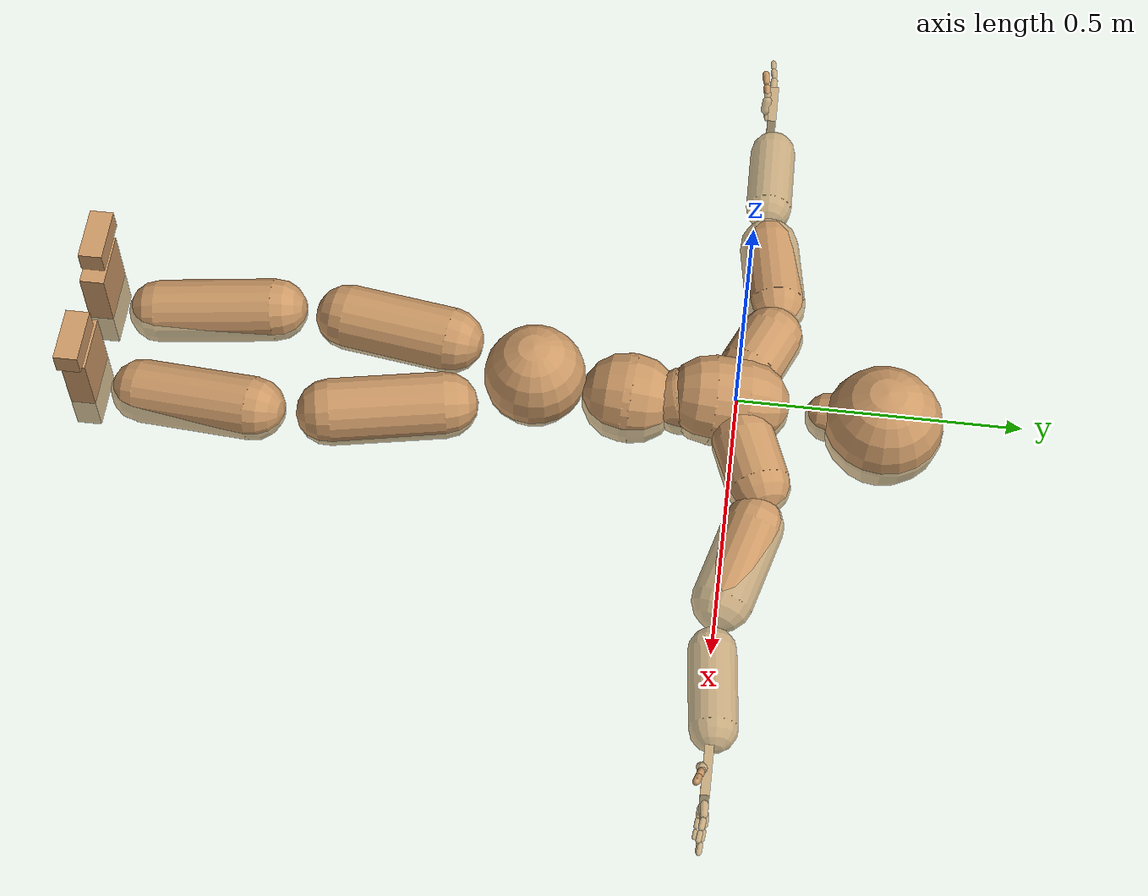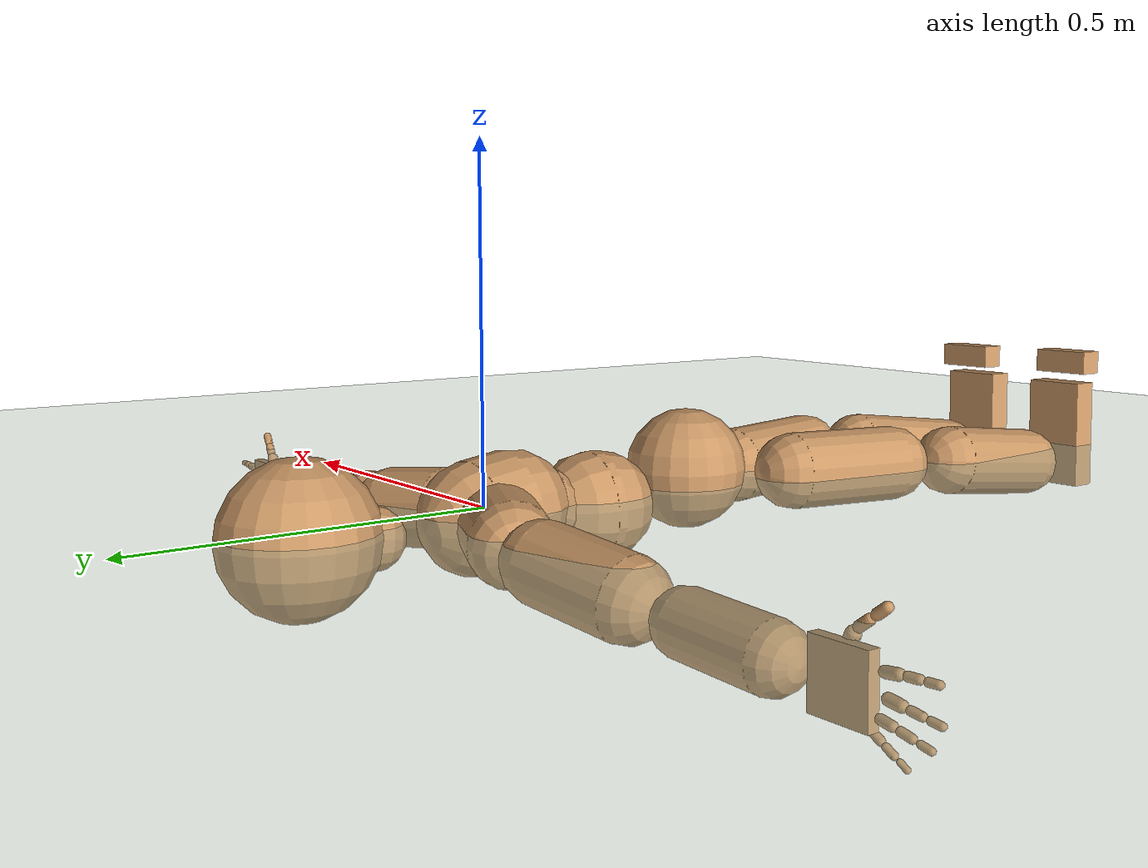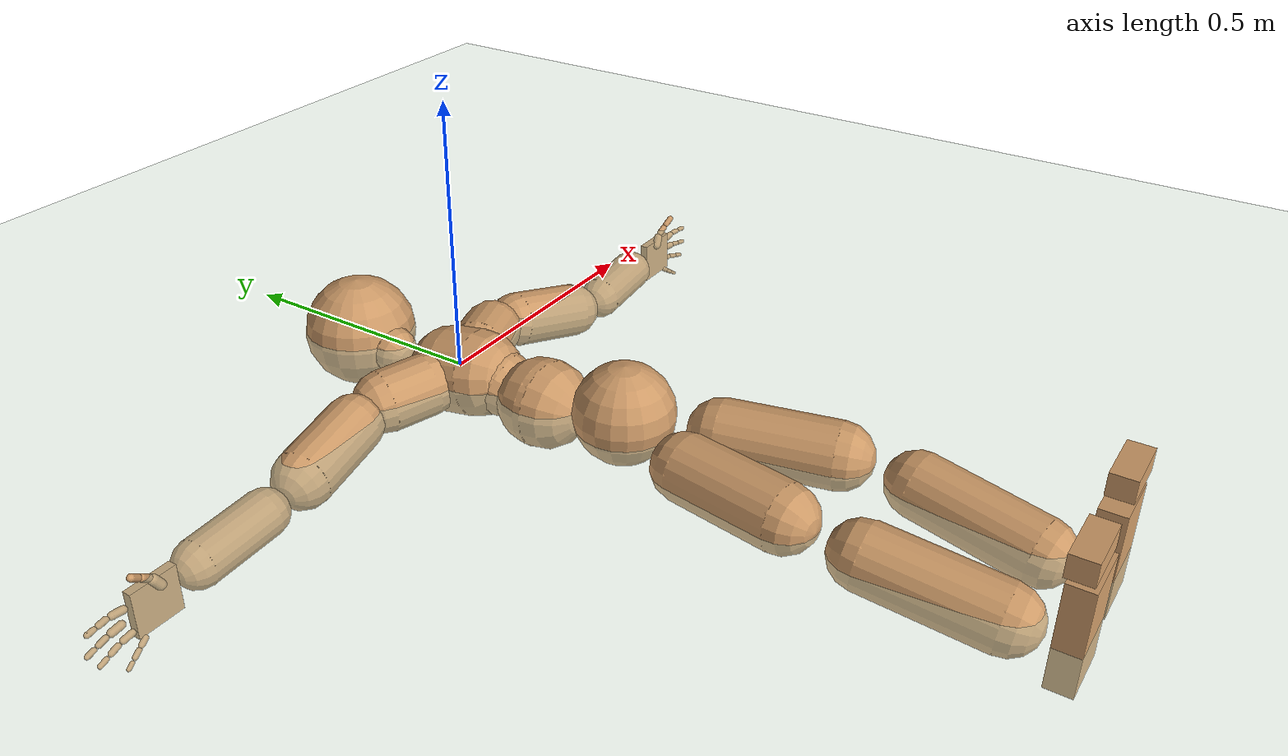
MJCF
<?xml version='1.0' encoding='utf-8'?>
<mujoco model="smplx_mapped_s149">
  <compiler coordinate="local" />
  <default>
    <joint damping="0.0" armature="0.01" stiffness="0.0" limited="true" />
    <geom conaffinity="1" condim="3" contype="7" margin="0.001" rgba="0.8 0.6 .4 1" />
  </default>
  <asset>
    <texture type="skybox" builtin="gradient" rgb1=".4 .5 .6" rgb2="0 0 0" width="100" height="100" />
    <texture builtin="flat" height="1278" mark="cross" markrgb="1 1 1" name="texgeom" random="0.01" rgb1="0.8 0.6 0.4" rgb2="0.8 0.6 0.4" type="cube" width="127" />
    <texture builtin="checker" height="100" name="texplane" rgb1="0 0 0" rgb2="0.8 0.8 0.8" type="2d" width="100" />
    <material name="MatPlane" reflectance="0.5" shininess="1" specular="1" texrepeat="60 60" texture="texplane" />
    <material name="geom" texture="texgeom" texuniform="true" />
  </asset>
  <worldbody>
    <light cutoff="100" diffuse="1 1 1" dir="-0 0 -1.3" directional="true" exponent="1" pos="0 0 1.3" specular=".1 .1 .1" />
    <geom conaffinity="1" condim="3" name="floor" pos="0 0 0" rgba="0.8 0.9 0.8 1" size="100 100 .2" type="plane" material="MatPlane" />
    <body name="Pelvis" pos="0.0013 -0.3548 0.0197">
      <freejoint name="Pelvis" />
      <geom type="sphere" contype="1" conaffinity="1" density="4629.6296296296305" size="0.09" pos="0.0000 0.0000 0.0000" name="Pelvis" />
      <body name="L_Hip" pos="0.0533 -0.0855 -0.0214">
        <joint name="L_Hip_x" type="hinge" pos="0 0 0" axis="1 0 0" stiffness="800" damping="80" armature="0.02" range="-180.00 180.00" />
        <joint name="L_Hip_y" type="hinge" pos="0 0 0" axis="0 1 0" stiffness="800" damping="80" armature="0.02" range="-180.00 180.00" />
        <joint name="L_Hip_z" type="hinge" pos="0 0 0" axis="0 0 1" stiffness="800" damping="80" armature="0.02" range="-180.00 180.00" />
        <geom type="capsule" contype="1" conaffinity="1" density="2040.816327" fromto="0.0133 -0.0658 0.0010 0.0531 -0.2631 0.0041" size="0.059" />
        <body name="L_Knee" pos="0.0664 -0.3289 0.0051">
          <joint name="L_Knee_x" type="hinge" pos="0 0 0" axis="1 0 0" stiffness="800" damping="80" armature="0.02" range="-180.00 180.00" />
          <joint name="L_Knee_y" type="hinge" pos="0 0 0" axis="0 1 0" stiffness="800" damping="80" armature="0.02" range="-180.00 180.00" />
          <joint name="L_Knee_z" type="hinge" pos="0 0 0" axis="0 0 1" stiffness="800" damping="80" armature="0.02" range="-180.00 180.00" />
          <geom type="capsule" contype="1" conaffinity="1" density="1234.567901" fromto="-0.0094 -0.0690 -0.0079 -0.0375 -0.2759 -0.0314" size="0.0564" />
          <body name="L_Ankle" pos="-0.0469 -0.3449 -0.0393">
            <joint name="L_Ankle_x" type="hinge" pos="0 0 0" axis="1 0 0" stiffness="800" damping="80" armature="0.02" range="-180.00 180.00" />
            <joint name="L_Ankle_y" type="hinge" pos="0 0 0" axis="0 1 0" stiffness="800" damping="80" armature="0.02" range="-180.00 180.00" />
            <joint name="L_Ankle_z" type="hinge" pos="0 0 0" axis="0 0 1" stiffness="800" damping="80" armature="0.02" range="-180.00 180.00" />
            <geom type="box" contype="1" conaffinity="1" density="1000" pos="0.0115 -0.0234 0.0566" size="0.0502 0.0216 0.0909" quat="1.0000 0.0000 0.0000 0.0000" />
            <body name="L_Toe" pos="0.0410 -0.0466 0.1205">
              <joint name="L_Toe_x" type="hinge" pos="0 0 0" axis="1 0 0" stiffness="500" damping="50" armature="0.02" range="-180.00 180.00" />
              <joint name="L_Toe_y" type="hinge" pos="0 0 0" axis="0 1 0" stiffness="500" damping="50" armature="0.02" range="-180.00 180.00" />
              <joint name="L_Toe_z" type="hinge" pos="0 0 0" axis="0 0 1" stiffness="500" damping="50" armature="0.02" range="-180.00 180.00" />
              <geom type="box" contype="1" conaffinity="1" density="1000" pos="-0.0115 0.0227 0.0576" size="0.0493 0.0209 0.0194" quat="1.0000 0.0000 0.0000 0.0000" />
            </body>
          </body>
        </body>
      </body>
      <body name="R_Hip" pos="-0.0554 -0.0960 -0.0123">
        <joint name="R_Hip_x" type="hinge" pos="0 0 0" axis="1 0 0" stiffness="800" damping="80" armature="0.02" range="-180.00 180.00" />
        <joint name="R_Hip_y" type="hinge" pos="0 0 0" axis="0 1 0" stiffness="800" damping="80" armature="0.02" range="-180.00 180.00" />
        <joint name="R_Hip_z" type="hinge" pos="0 0 0" axis="0 0 1" stiffness="800" damping="80" armature="0.02" range="-180.00 180.00" />
        <geom type="capsule" contype="1" conaffinity="1" density="2040.816327" fromto="-0.0099 -0.0629 -0.0007 -0.0396 -0.2516 -0.0028" size="0.0588" />
        <body name="R_Knee" pos="-0.0495 -0.3145 -0.0035">
          <joint name="R_Knee_x" type="hinge" pos="0 0 0" axis="1 0 0" stiffness="800" damping="80" armature="0.02" range="-180.00 180.00" />
          <joint name="R_Knee_y" type="hinge" pos="0 0 0" axis="0 1 0" stiffness="800" damping="80" armature="0.02" range="-180.00 180.00" />
          <joint name="R_Knee_z" type="hinge" pos="0 0 0" axis="0 0 1" stiffness="800" damping="80" armature="0.02" range="-180.00 180.00" />
          <geom type="capsule" contype="1" conaffinity="1" density="1234.567901" fromto="0.0036 -0.0710 -0.0080 0.0143 -0.2838 -0.0321" size="0.0564" />
          <body name="R_Ankle" pos="0.0179 -0.3548 -0.0402">
            <joint name="R_Ankle_x" type="hinge" pos="0 0 0" axis="1 0 0" stiffness="800" damping="80" armature="0.02" range="-180.00 180.00" />
            <joint name="R_Ankle_y" type="hinge" pos="0 0 0" axis="0 1 0" stiffness="800" damping="80" armature="0.02" range="-180.00 180.00" />
            <joint name="R_Ankle_z" type="hinge" pos="0 0 0" axis="0 0 1" stiffness="800" damping="80" armature="0.02" range="-180.00 180.00" />
            <geom type="box" contype="1" conaffinity="1" density="1000" pos="-0.0091 -0.0250 0.0535" size="0.0502 0.0216 0.0909" quat="1.0000 0.0000 0.0000 0.0000" />
            <body name="R_Toe" pos="-0.0320 -0.0467 0.1271">
              <joint name="R_Toe_x" type="hinge" pos="0 0 0" axis="1 0 0" stiffness="500" damping="50" armature="0.02" range="-180.00 180.00" />
              <joint name="R_Toe_y" type="hinge" pos="0 0 0" axis="0 1 0" stiffness="500" damping="50" armature="0.02" range="-180.00 180.00" />
              <joint name="R_Toe_z" type="hinge" pos="0 0 0" axis="0 0 1" stiffness="500" damping="50" armature="0.02" range="-180.00 180.00" />
              <geom type="box" contype="1" conaffinity="1" density="1000" pos="0.0091 0.0243 0.0545" size="0.0493 0.0209 0.0194" quat="1.0000 0.0000 0.0000 0.0000" />
            </body>
          </body>
        </body>
      </body>
      <body name="Torso" pos="-0.0026 0.0994 -0.0385">
        <joint name="Torso_x" type="hinge" pos="0 0 0" axis="1 0 0" stiffness="1000" damping="100" armature="0.02" range="-180.00 180.00" />
        <joint name="Torso_y" type="hinge" pos="0 0 0" axis="0 1 0" stiffness="1000" damping="100" armature="0.02" range="-180.00 180.00" />
        <joint name="Torso_z" type="hinge" pos="0 0 0" axis="0 0 1" stiffness="1000" damping="100" armature="0.02" range="-180.00 180.00" />
        <geom type="capsule" contype="1" conaffinity="1" density="1100" fromto="0.0041 0.0624 -0.0005 0.0050 0.0762 -0.0006" size="0.08" />
        <body name="Spine" pos="0.0091 0.1386 -0.0010">
          <joint name="Spine_x" type="hinge" pos="0 0 0" axis="1 0 0" stiffness="1000" damping="100" armature="0.02" range="-180.00 180.00" />
          <joint name="Spine_y" type="hinge" pos="0 0 0" axis="0 1 0" stiffness="1000" damping="100" armature="0.02" range="-180.00 180.00" />
          <joint name="Spine_z" type="hinge" pos="0 0 0" axis="0 0 1" stiffness="1000" damping="100" armature="0.02" range="-180.00 180.00" />
          <geom type="capsule" contype="1" conaffinity="1" density="1100" fromto="-0.0027 0.0240 0.0089 -0.0033 0.0293 0.0108" size="0.06" />
          <body name="Chest" pos="-0.0059 0.0533 0.0197">
            <joint name="Chest_x" type="hinge" pos="0 0 0" axis="1 0 0" stiffness="1000" damping="100" armature="0.02" range="-180.00 180.00" />
            <joint name="Chest_y" type="hinge" pos="0 0 0" axis="0 1 0" stiffness="1000" damping="100" armature="0.02" range="-180.00 180.00" />
            <joint name="Chest_z" type="hinge" pos="0 0 0" axis="0 0 1" stiffness="1000" damping="100" armature="0.02" range="-180.00 180.00" />
            <geom type="capsule" contype="1" conaffinity="1" density="1100" fromto="-0.0010 0.0196 -0.0029 -0.0041 0.0785 -0.0114" size="0.08" />
            <body name="Neck" pos="-0.0103 0.1529 -0.0280">
              <joint name="Neck_x" type="hinge" pos="0 0 0" axis="1 0 0" stiffness="500" damping="50" armature="0.02" range="-180.00 180.00" />
              <joint name="Neck_y" type="hinge" pos="0 0 0" axis="0 1 0" stiffness="500" damping="50" armature="0.02" range="-180.00 180.00" />
              <joint name="Neck_z" type="hinge" pos="0 0 0" axis="0 0 1" stiffness="500" damping="50" armature="0.02" range="-180.00 180.00" />
              <geom type="capsule" contype="1" conaffinity="1" density="1000" fromto="0.0106 0.0767 0.0077 0.0129 0.0937 0.0094" size="0.0437" />
              <body name="Head" pos="0.0235 0.1704 0.0172">
                <joint name="Head_x" type="hinge" pos="0 0 0" axis="1 0 0" stiffness="500" damping="50" armature="0.02" range="-180.00 180.00" />
                <joint name="Head_y" type="hinge" pos="0 0 0" axis="0 1 0" stiffness="500" damping="50" armature="0.02" range="-180.00 180.00" />
                <joint name="Head_z" type="hinge" pos="0 0 0" axis="0 0 1" stiffness="500" damping="50" armature="0.02" range="-180.00 180.00" />
                <geom type="sphere" contype="1" conaffinity="1" density="1000" size="0.1054" pos="0.0000 0.0000 0.0000" name="Head" />
              </body>
            </body>
            <body name="L_Thorax" pos="0.0416 0.0706 -0.0058">
              <joint name="L_Thorax_x" type="hinge" pos="0 0 0" axis="1 0 0" stiffness="500" damping="50" armature="0.02" range="-180.00 180.00" />
              <joint name="L_Thorax_y" type="hinge" pos="0 0 0" axis="0 1 0" stiffness="500" damping="50" armature="0.02" range="-180.00 180.00" />
              <joint name="L_Thorax_z" type="hinge" pos="0 0 0" axis="0 0 1" stiffness="500" damping="50" armature="0.02" range="-180.00 180.00" />
              <geom type="capsule" contype="1" conaffinity="1" density="1000" fromto="0.0289 0.0114 -0.0024 0.1158 0.0454 -0.0095" size="0.0564" />
              <body name="L_Shoulder" pos="0.1447 0.0568 -0.0118">
                <joint name="L_Shoulder_x" type="hinge" pos="0 0 0" axis="1 0 0" stiffness="500" damping="50" armature="0.02" range="-180.00 180.00" />
                <joint name="L_Shoulder_y" type="hinge" pos="0 0 0" axis="0 1 0" stiffness="500" damping="50" armature="0.02" range="-180.00 180.00" />
                <joint name="L_Shoulder_z" type="hinge" pos="0 0 0" axis="0 0 1" stiffness="500" damping="50" armature="0.02" range="-180.00 180.00" />
                <geom type="capsule" contype="1" conaffinity="1" density="1000" fromto="0.0453 -0.0134 -0.0093 0.1812 -0.0535 -0.0370" size="0.0533" />
                <body name="L_Elbow" pos="0.2265 -0.0669 -0.0463">
                  <joint name="L_Elbow_x" type="hinge" pos="0 0 0" axis="1 0 0" stiffness="500" damping="50" armature="0.02" range="-180.00 180.00" />
                  <joint name="L_Elbow_y" type="hinge" pos="0 0 0" axis="0 1 0" stiffness="500" damping="50" armature="0.02" range="-180.00 180.00" />
                  <joint name="L_Elbow_z" type="hinge" pos="0 0 0" axis="0 0 1" stiffness="500" damping="50" armature="0.02" range="-180.00 180.00" />
                  <geom type="capsule" contype="1" conaffinity="1" density="1000" fromto="0.0470 0.0047 0.0003 0.1882 0.0188 0.0012" size="0.0418" />
                  <body name="L_Wrist" pos="0.2352 0.0235 0.0014">
                    <joint name="L_Wrist_x" type="hinge" pos="0 0 0" axis="1 0 0" stiffness="300" damping="30" armature="0.02" range="-180.0000 180.0000" />
                    <joint name="L_Wrist_y" type="hinge" pos="0 0 0" axis="0 1 0" stiffness="300" damping="30" armature="0.02" range="-180.0000 180.0000" />
                    <joint name="L_Wrist_z" type="hinge" pos="0 0 0" axis="0 0 1" stiffness="300" damping="30" armature="0.02" range="-180.0000 180.0000" />
                    <geom type="box" contype="1" conaffinity="1" density="1000" pos="0.0456 -0.0084 -0.0022" size="0.0444 0.0076 0.0414" quat="1.0000 0.0000 0.0000 0.0000" />
                    <body name="L_Index1" pos="0.0921 -0.0077 0.0206">
                      <joint name="L_Index1_x" type="hinge" pos="0 0 0" axis="1 0 0" stiffness="100" damping="10" armature="0.02" range="-5.6250 5.6250" />
                      <joint name="L_Index1_y" type="hinge" pos="0 0 0" axis="0 1 0" stiffness="100" damping="10" armature="0.02" range="-5.6250 5.6250" />
                      <joint name="L_Index1_z" type="hinge" pos="0 0 0" axis="0 0 1" stiffness="100" damping="10" armature="0.02" range="-55.6250 55.6250" />
                      <geom type="capsule" contype="1" conaffinity="1" density="1000" fromto="0.0062 0.0003 0.0007 0.0248 0.0011 0.0028" size="0.0065" />
                      <body name="L_Index2" pos="0.0310 0.0013 0.0036">
                        <joint name="L_Index2_x" type="hinge" pos="0 0 0" axis="1 0 0" stiffness="100" damping="10" armature="0.02" range="-5.6250 5.6250" />
                        <joint name="L_Index2_y" type="hinge" pos="0 0 0" axis="0 1 0" stiffness="100" damping="10" armature="0.02" range="-5.6250 5.6250" />
                        <joint name="L_Index2_z" type="hinge" pos="0 0 0" axis="0 0 1" stiffness="100" damping="10" armature="0.02" range="-55.6250 55.6250" />
                        <geom type="capsule" contype="1" conaffinity="1" density="1000" fromto="0.0044 -0.0006 -0.0001 0.0175 -0.0023 -0.0003" size="0.0053" />
                        <body name="L_Index3" pos="0.0219 -0.0029 -0.0004">
                          <joint name="L_Index3_x" type="hinge" pos="0 0 0" axis="1 0 0" stiffness="100" damping="10" armature="0.02" range="-5.6250 5.6250" />
                          <joint name="L_Index3_y" type="hinge" pos="0 0 0" axis="0 1 0" stiffness="100" damping="10" armature="0.02" range="-5.6250 5.6250" />
                          <joint name="L_Index3_z" type="hinge" pos="0 0 0" axis="0 0 1" stiffness="100" damping="10" armature="0.02" range="-90.0000 5.6250" />
                          <geom type="capsule" contype="1" conaffinity="1" density="1000" fromto="0.0046 -0.0006 -0.0001 0.0173 -0.0023 -0.0003" size="0.0047" />
                        </body>
                      </body>
                    </body>
                    <body name="L_Middle1" pos="0.0990 -0.0052 -0.0023">
                      <joint name="L_Middle1_x" type="hinge" pos="0 0 0" axis="1 0 0" stiffness="100" damping="10" armature="0.02" range="-5.6250 5.6250" />
                      <joint name="L_Middle1_y" type="hinge" pos="0 0 0" axis="0 1 0" stiffness="100" damping="10" armature="0.02" range="-5.6250 5.6250" />
                      <joint name="L_Middle1_z" type="hinge" pos="0 0 0" axis="0 0 1" stiffness="100" damping="10" armature="0.02" range="-55.6250 55.6250" />
                      <geom type="capsule" contype="1" conaffinity="1" density="1000" fromto="0.0059 0.0001 -0.0008 0.0236 0.0002 -0.0031" size="0.0067" />
                      <body name="L_Middle2" pos="0.0295 0.0003 -0.0038">
                        <joint name="L_Middle2_x" type="hinge" pos="0 0 0" axis="1 0 0" stiffness="100" damping="10" armature="0.02" range="-5.6250 5.6250" />
                        <joint name="L_Middle2_y" type="hinge" pos="0 0 0" axis="0 1 0" stiffness="100" damping="10" armature="0.02" range="-5.6250 5.6250" />
                        <joint name="L_Middle2_z" type="hinge" pos="0 0 0" axis="0 0 1" stiffness="100" damping="10" armature="0.02" range="-55.6250 55.6250" />
                        <geom type="capsule" contype="1" conaffinity="1" density="1000" fromto="0.0045 -0.0005 -0.0008 0.0179 -0.0018 -0.0032" size="0.0050" />
                        <body name="L_Middle3" pos="0.0223 -0.0023 -0.0040">
                          <joint name="L_Middle3_x" type="hinge" pos="0 0 0" axis="1 0 0" stiffness="100" damping="10" armature="0.02" range="-5.6250 5.6250" />
                          <joint name="L_Middle3_y" type="hinge" pos="0 0 0" axis="0 1 0" stiffness="100" damping="10" armature="0.02" range="-5.6250 5.6250" />
                          <joint name="L_Middle3_z" type="hinge" pos="0 0 0" axis="0 0 1" stiffness="100" damping="10" armature="0.02" range="-90.0000 5.6250" />
                          <geom type="capsule" contype="1" conaffinity="1" density="1000" fromto="0.0045 -0.0005 -0.0008 0.0178 -0.0018 -0.0032" size="0.0045" />
                        </body>
                      </body>
                    </body>
                    <body name="L_Pinky1" pos="0.0747 -0.0130 -0.0421">
                      <joint name="L_Pinky1_x" type="hinge" pos="0 0 0" axis="1 0 0" stiffness="100" damping="10" armature="0.02" range="-5.6250 5.6250" />
                      <joint name="L_Pinky1_y" type="hinge" pos="0 0 0" axis="0 1 0" stiffness="100" damping="10" armature="0.02" range="-5.6250 5.6250" />
                      <joint name="L_Pinky1_z" type="hinge" pos="0 0 0" axis="0 0 1" stiffness="100" damping="10" armature="0.02" range="-55.6250 55.6250" />
                      <geom type="capsule" contype="1" conaffinity="1" density="1000" fromto="0.0032 -0.0004 -0.0022 0.0127 -0.0015 -0.0088" size="0.0050" />
                      <body name="L_Pinky2" pos="0.0158 -0.0019 -0.0110">
                        <joint name="L_Pinky2_x" type="hinge" pos="0 0 0" axis="1 0 0" stiffness="100" damping="10" armature="0.02" range="-5.6250 5.6250" />
                        <joint name="L_Pinky2_y" type="hinge" pos="0 0 0" axis="0 1 0" stiffness="100" damping="10" armature="0.02" range="-5.6250 5.6250" />
                        <joint name="L_Pinky2_z" type="hinge" pos="0 0 0" axis="0 0 1" stiffness="100" damping="10" armature="0.02" range="-55.6250 55.6250" />
                        <geom type="capsule" contype="1" conaffinity="1" density="1000" fromto="0.0031 -0.0004 -0.0021 0.0125 -0.0017 -0.0083" size="0.0045" />
                        <body name="L_Pinky3" pos="0.0156 -0.0021 -0.0104">
                          <joint name="L_Pinky3_x" type="hinge" pos="0 0 0" axis="1 0 0" stiffness="100" damping="10" armature="0.02" range="-5.6250 5.6250" />
                          <joint name="L_Pinky3_y" type="hinge" pos="0 0 0" axis="0 1 0" stiffness="100" damping="10" armature="0.02" range="-5.6250 5.6250" />
                          <joint name="L_Pinky3_z" type="hinge" pos="0 0 0" axis="0 0 1" stiffness="100" damping="10" armature="0.02" range="-90.0000 5.6250" />
                          <geom type="capsule" contype="1" conaffinity="1" density="1000" fromto="0.0034 -0.0005 -0.0022 0.0122 -0.0017 -0.0081" size="0.0036" />
                        </body>
                      </body>
                    </body>
                    <body name="L_Ring1" pos="0.0874 -0.0077 -0.0254">
                      <joint name="L_Ring1_x" type="hinge" pos="0 0 0" axis="1 0 0" stiffness="100" damping="10" armature="0.02" range="-5.6250 5.6250" />
                      <joint name="L_Ring1_y" type="hinge" pos="0 0 0" axis="0 1 0" stiffness="100" damping="10" armature="0.02" range="-5.6250 5.6250" />
                      <joint name="L_Ring1_z" type="hinge" pos="0 0 0" axis="0 0 1" stiffness="100" damping="10" armature="0.02" range="-55.6250 55.6250" />
                      <geom type="capsule" contype="1" conaffinity="1" density="1000" fromto="0.0055 0.0001 -0.0009 0.0219 0.0005 -0.0036" size="0.0057" />
                      <body name="L_Ring2" pos="0.0274 0.0006 -0.0045">
                        <joint name="L_Ring2_x" type="hinge" pos="0 0 0" axis="1 0 0" stiffness="100" damping="10" armature="0.02" range="-5.6250 5.6250" />
                        <joint name="L_Ring2_y" type="hinge" pos="0 0 0" axis="0 1 0" stiffness="100" damping="10" armature="0.02" range="-5.6250 5.6250" />
                        <joint name="L_Ring2_z" type="hinge" pos="0 0 0" axis="0 0 1" stiffness="100" damping="10" armature="0.02" range="-55.6250 55.6250" />
                        <geom type="capsule" contype="1" conaffinity="1" density="1000" fromto="0.0044 -0.0004 -0.0012 0.0178 -0.0017 -0.0049" size="0.0051" />
                        <body name="L_Ring3" pos="0.0222 -0.0021 -0.0062">
                          <joint name="L_Ring3_x" type="hinge" pos="0 0 0" axis="1 0 0" stiffness="100" damping="10" armature="0.02" range="-5.6250 5.6250" />
                          <joint name="L_Ring3_y" type="hinge" pos="0 0 0" axis="0 1 0" stiffness="100" damping="10" armature="0.02" range="-5.6250 5.6250" />
                          <joint name="L_Ring3_z" type="hinge" pos="0 0 0" axis="0 0 1" stiffness="100" damping="10" armature="0.02" range="-90.0000 5.6250" />
                          <geom type="capsule" contype="1" conaffinity="1" density="1000" fromto="0.0047 -0.0004 -0.0013 0.0176 -0.0017 -0.0049" size="0.0043" />
                        </body>
                      </body>
                    </body>
                    <body name="L_Thumb1" pos="0.0350 -0.0188 0.0253">
                      <joint name="L_Thumb1_x" type="hinge" pos="0 0 0" axis="1 0 0" stiffness="100" damping="10" armature="0.02" range="-55.6250 55.6250" />
                      <joint name="L_Thumb1_y" type="hinge" pos="0 0 0" axis="0 1 0" stiffness="100" damping="10" armature="0.02" range="-55.6250 55.6250" />
                      <joint name="L_Thumb1_z" type="hinge" pos="0 0 0" axis="0 0 1" stiffness="100" damping="10" armature="0.02" range="-55.6250 55.6250" />
                      <geom type="capsule" contype="1" conaffinity="1" density="1000" fromto="0.0032 0.0005 0.0050 0.0126 0.0022 0.0201" size="0.0086" />
                      <body name="L_Thumb2" pos="0.0158 0.0027 0.0251">
                        <joint name="L_Thumb2_x" type="hinge" pos="0 0 0" axis="1 0 0" stiffness="100" damping="10" armature="0.02" range="-5.6250 5.6250" />
                        <joint name="L_Thumb2_y" type="hinge" pos="0 0 0" axis="0 1 0" stiffness="100" damping="10" armature="0.02" range="-5.6250 5.6250" />
                        <joint name="L_Thumb2_z" type="hinge" pos="0 0 0" axis="0 0 1" stiffness="100" damping="10" armature="0.02" range="-5.6250 5.6250" />
                        <geom type="capsule" contype="1" conaffinity="1" density="1000" fromto="0.0038 -0.0009 0.0031 0.0154 -0.0034 0.0122" size="0.0065" />
                        <body name="L_Thumb3" pos="0.0192 -0.0043 0.0153">
                          <joint name="L_Thumb3_x" type="hinge" pos="0 0 0" axis="1 0 0" stiffness="100" damping="10" armature="0.02" range="-5.6250 5.6250" />
                          <joint name="L_Thumb3_y" type="hinge" pos="0 0 0" axis="0 1 0" stiffness="100" damping="10" armature="0.02" range="-5.6250 5.6250" />
                          <joint name="L_Thumb3_z" type="hinge" pos="0 0 0" axis="0 0 1" stiffness="100" damping="10" armature="0.02" range="-90.0000 5.6250" />
                          <geom type="capsule" contype="1" conaffinity="1" density="1000" fromto="0.0032 -0.0007 0.0025 0.0160 -0.0036 0.0128" size="0.0062" />
                        </body>
                      </body>
                    </body>
                  </body>
                </body>
              </body>
            </body>
            <body name="R_Thorax" pos="-0.0466 0.0709 -0.0090">
              <joint name="R_Thorax_x" type="hinge" pos="0 0 0" axis="1 0 0" stiffness="500" damping="50" armature="0.02" range="-180.00 180.00" />
              <joint name="R_Thorax_y" type="hinge" pos="0 0 0" axis="0 1 0" stiffness="500" damping="50" armature="0.02" range="-180.00 180.00" />
              <joint name="R_Thorax_z" type="hinge" pos="0 0 0" axis="0 0 1" stiffness="500" damping="50" armature="0.02" range="-180.00 180.00" />
              <geom type="capsule" contype="1" conaffinity="1" density="1000" fromto="-0.0266 0.0110 -0.0021 -0.1066 0.0439 -0.0084" size="0.0576" />
              <body name="R_Shoulder" pos="-0.1332 0.0548 -0.0105">
                <joint name="R_Shoulder_x" type="hinge" pos="0 0 0" axis="1 0 0" stiffness="500" damping="50" armature="0.02" range="-180.00 180.00" />
                <joint name="R_Shoulder_y" type="hinge" pos="0 0 0" axis="0 1 0" stiffness="500" damping="50" armature="0.02" range="-180.00 180.00" />
                <joint name="R_Shoulder_z" type="hinge" pos="0 0 0" axis="0 0 1" stiffness="500" damping="50" armature="0.02" range="-180.00 180.00" />
                <geom type="capsule" contype="1" conaffinity="1" density="1000" fromto="-0.0486 -0.0071 -0.0063 -0.1943 -0.0285 -0.0253" size="0.0538" />
                <body name="R_Elbow" pos="-0.2429 -0.0356 -0.0316">
                  <joint name="R_Elbow_x" type="hinge" pos="0 0 0" axis="1 0 0" stiffness="500" damping="50" armature="0.02" range="-180.00 180.00" />
                  <joint name="R_Elbow_y" type="hinge" pos="0 0 0" axis="0 1 0" stiffness="500" damping="50" armature="0.02" range="-180.00 180.00" />
                  <joint name="R_Elbow_z" type="hinge" pos="0 0 0" axis="0 0 1" stiffness="500" damping="50" armature="0.02" range="-180.00 180.00" />
                  <geom type="capsule" contype="1" conaffinity="1" density="1000" fromto="-0.0459 -0.0005 -0.0021 -0.1834 -0.0021 -0.0083" size="0.042" />
                  <body name="R_Wrist" pos="-0.2293 -0.0026 -0.0103">
                    <joint name="R_Wrist_x" type="hinge" pos="0 0 0" axis="1 0 0" stiffness="300" damping="30" armature="0.02" range="-180.0000 180.0000" />
                    <joint name="R_Wrist_y" type="hinge" pos="0 0 0" axis="0 1 0" stiffness="300" damping="30" armature="0.02" range="-180.0000 180.0000" />
                    <joint name="R_Wrist_z" type="hinge" pos="0 0 0" axis="0 0 1" stiffness="300" damping="30" armature="0.02" range="-180.0000 180.0000" />
                    <geom type="box" contype="1" conaffinity="1" density="1000" pos="-0.0449 -0.0080 -0.0014" size="0.0416 0.0078 0.0414" quat="1.0000 0.0000 0.0000 0.0000" />
                    <body name="R_Index1" pos="-0.0918 -0.0112 0.0195">
                      <joint name="R_Index1_x" type="hinge" pos="0 0 0" axis="1 0 0" stiffness="100" damping="10" armature="0.02" range="-5.6250 5.6250" />
                      <joint name="R_Index1_y" type="hinge" pos="0 0 0" axis="0 1 0" stiffness="100" damping="10" armature="0.02" range="-5.6250 5.6250" />
                      <joint name="R_Index1_z" type="hinge" pos="0 0 0" axis="0 0 1" stiffness="100" damping="10" armature="0.02" range="-55.6250 55.6250" />
                      <geom type="capsule" contype="1" conaffinity="1" density="1000" fromto="-0.0062 0.0003 0.0007 -0.0248 0.0011 0.0028" size="0.0065" />
                      <body name="R_Index2" pos="-0.0310 0.0013 0.0036">
                        <joint name="R_Index2_x" type="hinge" pos="0 0 0" axis="1 0 0" stiffness="100" damping="10" armature="0.02" range="-5.6250 5.6250" />
                        <joint name="R_Index2_y" type="hinge" pos="0 0 0" axis="0 1 0" stiffness="100" damping="10" armature="0.02" range="-5.6250 5.6250" />
                        <joint name="R_Index2_z" type="hinge" pos="0 0 0" axis="0 0 1" stiffness="100" damping="10" armature="0.02" range="-55.6250 55.6250" />
                        <geom type="capsule" contype="1" conaffinity="1" density="1000" fromto="-0.0044 -0.0006 -0.0001 -0.0175 -0.0023 -0.0003" size="0.0053" />
                        <body name="R_Index3" pos="-0.0219 -0.0029 -0.0004">
                          <joint name="R_Index3_x" type="hinge" pos="0 0 0" axis="1 0 0" stiffness="100" damping="10" armature="0.02" range="-5.6250 5.6250" />
                          <joint name="R_Index3_y" type="hinge" pos="0 0 0" axis="0 1 0" stiffness="100" damping="10" armature="0.02" range="-5.6250 5.6250" />
                          <joint name="R_Index3_z" type="hinge" pos="0 0 0" axis="0 0 1" stiffness="100" damping="10" armature="0.02" range="-5.6250 90.0000" />
                          <geom type="capsule" contype="1" conaffinity="1" density="1000" fromto="-0.0050 -0.0007 -0.0001 -0.0169 -0.0022 -0.0003" size="0.0048" />
                        </body>
                      </body>
                    </body>
                    <body name="R_Middle1" pos="-0.0987 -0.0087 -0.0033">
                      <joint name="R_Middle1_x" type="hinge" pos="0 0 0" axis="1 0 0" stiffness="100" damping="10" armature="0.02" range="-5.6250 5.6250" />
                      <joint name="R_Middle1_y" type="hinge" pos="0 0 0" axis="0 1 0" stiffness="100" damping="10" armature="0.02" range="-5.6250 5.6250" />
                      <joint name="R_Middle1_z" type="hinge" pos="0 0 0" axis="0 0 1" stiffness="100" damping="10" armature="0.02" range="-55.6250 55.6250" />
                      <geom type="capsule" contype="1" conaffinity="1" density="1000" fromto="-0.0059 0.0001 -0.0008 -0.0236 0.0002 -0.0031" size="0.0067" />
                      <body name="R_Middle2" pos="-0.0295 0.0003 -0.0038">
                        <joint name="R_Middle2_x" type="hinge" pos="0 0 0" axis="1 0 0" stiffness="100" damping="10" armature="0.02" range="-5.6250 5.6250" />
                        <joint name="R_Middle2_y" type="hinge" pos="0 0 0" axis="0 1 0" stiffness="100" damping="10" armature="0.02" range="-5.6250 5.6250" />
                        <joint name="R_Middle2_z" type="hinge" pos="0 0 0" axis="0 0 1" stiffness="100" damping="10" armature="0.02" range="-55.6250 55.6250" />
                        <geom type="capsule" contype="1" conaffinity="1" density="1000" fromto="-0.0045 -0.0005 -0.0008 -0.0179 -0.0018 -0.0032" size="0.0050" />
                        <body name="R_Middle3" pos="-0.0223 -0.0023 -0.0040">
                          <joint name="R_Middle3_x" type="hinge" pos="0 0 0" axis="1 0 0" stiffness="100" damping="10" armature="0.02" range="-5.6250 5.6250" />
                          <joint name="R_Middle3_y" type="hinge" pos="0 0 0" axis="0 1 0" stiffness="100" damping="10" armature="0.02" range="-5.6250 5.6250" />
                          <joint name="R_Middle3_z" type="hinge" pos="0 0 0" axis="0 0 1" stiffness="100" damping="10" armature="0.02" range="-5.6250 90.0000" />
                          <geom type="capsule" contype="1" conaffinity="1" density="1000" fromto="-0.0049 -0.0005 -0.0009 -0.0175 -0.0018 -0.0031" size="0.0045" />
                        </body>
                      </body>
                    </body>
                    <body name="R_Pinky1" pos="-0.0744 -0.0165 -0.0431">
                      <joint name="R_Pinky1_x" type="hinge" pos="0 0 0" axis="1 0 0" stiffness="100" damping="10" armature="0.02" range="-5.6250 5.6250" />
                      <joint name="R_Pinky1_y" type="hinge" pos="0 0 0" axis="0 1 0" stiffness="100" damping="10" armature="0.02" range="-5.6250 5.6250" />
                      <joint name="R_Pinky1_z" type="hinge" pos="0 0 0" axis="0 0 1" stiffness="100" damping="10" armature="0.02" range="-55.6250 55.6250" />
                      <geom type="capsule" contype="1" conaffinity="1" density="1000" fromto="-0.0032 -0.0004 -0.0022 -0.0127 -0.0015 -0.0088" size="0.0050" />
                      <body name="R_Pinky2" pos="-0.0158 -0.0019 -0.0110">
                        <joint name="R_Pinky2_x" type="hinge" pos="0 0 0" axis="1 0 0" stiffness="100" damping="10" armature="0.02" range="-5.6250 5.6250" />
                        <joint name="R_Pinky2_y" type="hinge" pos="0 0 0" axis="0 1 0" stiffness="100" damping="10" armature="0.02" range="-5.6250 5.6250" />
                        <joint name="R_Pinky2_z" type="hinge" pos="0 0 0" axis="0 0 1" stiffness="100" damping="10" armature="0.02" range="-55.6250 55.6250" />
                        <geom type="capsule" contype="1" conaffinity="1" density="1000" fromto="-0.0031 -0.0004 -0.0021 -0.0125 -0.0017 -0.0083" size="0.0045" />
                        <body name="R_Pinky3" pos="-0.0156 -0.0021 -0.0104">
                          <joint name="R_Pinky3_x" type="hinge" pos="0 0 0" axis="1 0 0" stiffness="100" damping="10" armature="0.02" range="-5.6250 5.6250" />
                          <joint name="R_Pinky3_y" type="hinge" pos="0 0 0" axis="0 1 0" stiffness="100" damping="10" armature="0.02" range="-5.6250 5.6250" />
                          <joint name="R_Pinky3_z" type="hinge" pos="0 0 0" axis="0 0 1" stiffness="100" damping="10" armature="0.02" range="-5.6250 90.0000" />
                          <geom type="capsule" contype="1" conaffinity="1" density="1000" fromto="-0.0036 -0.0005 -0.0024 -0.0120 -0.0017 -0.0080" size="0.0036" />
                        </body>
                      </body>
                    </body>
                    <body name="R_Ring1" pos="-0.0871 -0.0112 -0.0264">
                      <joint name="R_Ring1_x" type="hinge" pos="0 0 0" axis="1 0 0" stiffness="100" damping="10" armature="0.02" range="-5.6250 5.6250" />
                      <joint name="R_Ring1_y" type="hinge" pos="0 0 0" axis="0 1 0" stiffness="100" damping="10" armature="0.02" range="-5.6250 5.6250" />
                      <joint name="R_Ring1_z" type="hinge" pos="0 0 0" axis="0 0 1" stiffness="100" damping="10" armature="0.02" range="-55.6250 55.6250" />
                      <geom type="capsule" contype="1" conaffinity="1" density="1000" fromto="-0.0055 0.0001 -0.0009 -0.0219 0.0005 -0.0036" size="0.0057" />
                      <body name="R_Ring2" pos="-0.0274 0.0006 -0.0045">
                        <joint name="R_Ring2_x" type="hinge" pos="0 0 0" axis="1 0 0" stiffness="100" damping="10" armature="0.02" range="-5.6250 5.6250" />
                        <joint name="R_Ring2_y" type="hinge" pos="0 0 0" axis="0 1 0" stiffness="100" damping="10" armature="0.02" range="-5.6250 5.6250" />
                        <joint name="R_Ring2_z" type="hinge" pos="0 0 0" axis="0 0 1" stiffness="100" damping="10" armature="0.02" range="-55.6250 55.6250" />
                        <geom type="capsule" contype="1" conaffinity="1" density="1000" fromto="-0.0044 -0.0004 -0.0012 -0.0178 -0.0017 -0.0049" size="0.0051" />
                        <body name="R_Ring3" pos="-0.0222 -0.0021 -0.0062">
                          <joint name="R_Ring3_x" type="hinge" pos="0 0 0" axis="1 0 0" stiffness="100" damping="10" armature="0.02" range="-5.6250 5.6250" />
                          <joint name="R_Ring3_y" type="hinge" pos="0 0 0" axis="0 1 0" stiffness="100" damping="10" armature="0.02" range="-5.6250 5.6250" />
                          <joint name="R_Ring3_z" type="hinge" pos="0 0 0" axis="0 0 1" stiffness="100" damping="10" armature="0.02" range="-5.6250 90.0000" />
                          <geom type="capsule" contype="1" conaffinity="1" density="1000" fromto="-0.0049 -0.0005 -0.0014 -0.0173 -0.0017 -0.0048" size="0.0043" />
                        </body>
                      </body>
                    </body>
                    <body name="R_Thumb1" pos="-0.0348 -0.0223 0.0243">
                      <joint name="R_Thumb1_x" type="hinge" pos="0 0 0" axis="1 0 0" stiffness="100" damping="10" armature="0.02" range="-55.6250 55.6250" />
                      <joint name="R_Thumb1_y" type="hinge" pos="0 0 0" axis="0 1 0" stiffness="100" damping="10" armature="0.02" range="-55.6250 55.6250" />
                      <joint name="R_Thumb1_z" type="hinge" pos="0 0 0" axis="0 0 1" stiffness="100" damping="10" armature="0.02" range="-55.6250 55.6250" />
                      <geom type="capsule" contype="1" conaffinity="1" density="1000" fromto="-0.0032 0.0005 0.0050 -0.0126 0.0022 0.0201" size="0.0086" />
                      <body name="R_Thumb2" pos="-0.0158 0.0027 0.0251">
                        <joint name="R_Thumb2_x" type="hinge" pos="0 0 0" axis="1 0 0" stiffness="100" damping="10" armature="0.02" range="-5.6250 5.6250" />
                        <joint name="R_Thumb2_y" type="hinge" pos="0 0 0" axis="0 1 0" stiffness="100" damping="10" armature="0.02" range="-5.6250 5.6250" />
                        <joint name="R_Thumb2_z" type="hinge" pos="0 0 0" axis="0 0 1" stiffness="100" damping="10" armature="0.02" range="-5.6250 5.6250" />
                        <geom type="capsule" contype="1" conaffinity="1" density="1000" fromto="-0.0038 -0.0009 0.0031 -0.0154 -0.0034 0.0122" size="0.0065" />
                        <body name="R_Thumb3" pos="-0.0192 -0.0043 0.0153">
                          <joint name="R_Thumb3_x" type="hinge" pos="0 0 0" axis="1 0 0" stiffness="100" damping="10" armature="0.02" range="-5.6250 5.6250" />
                          <joint name="R_Thumb3_y" type="hinge" pos="0 0 0" axis="0 1 0" stiffness="100" damping="10" armature="0.02" range="-5.6250 5.6250" />
                          <joint name="R_Thumb3_z" type="hinge" pos="0 0 0" axis="0 0 1" stiffness="100" damping="10" armature="0.02" range="-5.6250 90.0000" />
                          <geom type="capsule" contype="1" conaffinity="1" density="1000" fromto="-0.0040 -0.0009 0.0032 -0.0152 -0.0034 0.0121" size="0.0064" />
                        </body>
                      </body>
                    </body>
                  </body>
                </body>
              </body>
            </body>
          </body>
        </body>
      </body>
    </body>
  </worldbody>
  <actuator>
    <motor name="L_Hip_x" joint="L_Hip_x" gear="1" />
    <motor name="L_Hip_y" joint="L_Hip_y" gear="1" />
    <motor name="L_Hip_z" joint="L_Hip_z" gear="1" />
    <motor name="L_Knee_x" joint="L_Knee_x" gear="1" />
    <motor name="L_Knee_y" joint="L_Knee_y" gear="1" />
    <motor name="L_Knee_z" joint="L_Knee_z" gear="1" />
    <motor name="L_Ankle_x" joint="L_Ankle_x" gear="1" />
    <motor name="L_Ankle_y" joint="L_Ankle_y" gear="1" />
    <motor name="L_Ankle_z" joint="L_Ankle_z" gear="1" />
    <motor name="L_Toe_x" joint="L_Toe_x" gear="1" />
    <motor name="L_Toe_y" joint="L_Toe_y" gear="1" />
    <motor name="L_Toe_z" joint="L_Toe_z" gear="1" />
    <motor name="R_Hip_x" joint="R_Hip_x" gear="1" />
    <motor name="R_Hip_y" joint="R_Hip_y" gear="1" />
    <motor name="R_Hip_z" joint="R_Hip_z" gear="1" />
    <motor name="R_Knee_x" joint="R_Knee_x" gear="1" />
    <motor name="R_Knee_y" joint="R_Knee_y" gear="1" />
    <motor name="R_Knee_z" joint="R_Knee_z" gear="1" />
    <motor name="R_Ankle_x" joint="R_Ankle_x" gear="1" />
    <motor name="R_Ankle_y" joint="R_Ankle_y" gear="1" />
    <motor name="R_Ankle_z" joint="R_Ankle_z" gear="1" />
    <motor name="R_Toe_x" joint="R_Toe_x" gear="1" />
    <motor name="R_Toe_y" joint="R_Toe_y" gear="1" />
    <motor name="R_Toe_z" joint="R_Toe_z" gear="1" />
    <motor name="Torso_x" joint="Torso_x" gear="1" />
    <motor name="Torso_y" joint="Torso_y" gear="1" />
    <motor name="Torso_z" joint="Torso_z" gear="1" />
    <motor name="Spine_x" joint="Spine_x" gear="1" />
    <motor name="Spine_y" joint="Spine_y" gear="1" />
    <motor name="Spine_z" joint="Spine_z" gear="1" />
    <motor name="Chest_x" joint="Chest_x" gear="1" />
    <motor name="Chest_y" joint="Chest_y" gear="1" />
    <motor name="Chest_z" joint="Chest_z" gear="1" />
    <motor name="Neck_x" joint="Neck_x" gear="1" />
    <motor name="Neck_y" joint="Neck_y" gear="1" />
    <motor name="Neck_z" joint="Neck_z" gear="1" />
    <motor name="Head_x" joint="Head_x" gear="1" />
    <motor name="Head_y" joint="Head_y" gear="1" />
    <motor name="Head_z" joint="Head_z" gear="1" />
    <motor name="L_Thorax_x" joint="L_Thorax_x" gear="1" />
    <motor name="L_Thorax_y" joint="L_Thorax_y" gear="1" />
    <motor name="L_Thorax_z" joint="L_Thorax_z" gear="1" />
    <motor name="L_Shoulder_x" joint="L_Shoulder_x" gear="1" />
    <motor name="L_Shoulder_y" joint="L_Shoulder_y" gear="1" />
    <motor name="L_Shoulder_z" joint="L_Shoulder_z" gear="1" />
    <motor name="L_Elbow_x" joint="L_Elbow_x" gear="1" />
    <motor name="L_Elbow_y" joint="L_Elbow_y" gear="1" />
    <motor name="L_Elbow_z" joint="L_Elbow_z" gear="1" />
    <motor name="L_Wrist_x" joint="L_Wrist_x" gear="1" />
    <motor name="L_Wrist_y" joint="L_Wrist_y" gear="1" />
    <motor name="L_Wrist_z" joint="L_Wrist_z" gear="1" />
    <motor name="L_Index1_x" joint="L_Index1_x" gear="1" />
    <motor name="L_Index1_y" joint="L_Index1_y" gear="1" />
    <motor name="L_Index1_z" joint="L_Index1_z" gear="1" />
    <motor name="L_Index2_x" joint="L_Index2_x" gear="1" />
    <motor name="L_Index2_y" joint="L_Index2_y" gear="1" />
    <motor name="L_Index2_z" joint="L_Index2_z" gear="1" />
    <motor name="L_Index3_x" joint="L_Index3_x" gear="1" />
    <motor name="L_Index3_y" joint="L_Index3_y" gear="1" />
    <motor name="L_Index3_z" joint="L_Index3_z" gear="1" />
    <motor name="L_Middle1_x" joint="L_Middle1_x" gear="1" />
    <motor name="L_Middle1_y" joint="L_Middle1_y" gear="1" />
    <motor name="L_Middle1_z" joint="L_Middle1_z" gear="1" />
    <motor name="L_Middle2_x" joint="L_Middle2_x" gear="1" />
    <motor name="L_Middle2_y" joint="L_Middle2_y" gear="1" />
    <motor name="L_Middle2_z" joint="L_Middle2_z" gear="1" />
    <motor name="L_Middle3_x" joint="L_Middle3_x" gear="1" />
    <motor name="L_Middle3_y" joint="L_Middle3_y" gear="1" />
    <motor name="L_Middle3_z" joint="L_Middle3_z" gear="1" />
    <motor name="L_Pinky1_x" joint="L_Pinky1_x" gear="1" />
    <motor name="L_Pinky1_y" joint="L_Pinky1_y" gear="1" />
    <motor name="L_Pinky1_z" joint="L_Pinky1_z" gear="1" />
    <motor name="L_Pinky2_x" joint="L_Pinky2_x" gear="1" />
    <motor name="L_Pinky2_y" joint="L_Pinky2_y" gear="1" />
    <motor name="L_Pinky2_z" joint="L_Pinky2_z" gear="1" />
    <motor name="L_Pinky3_x" joint="L_Pinky3_x" gear="1" />
    <motor name="L_Pinky3_y" joint="L_Pinky3_y" gear="1" />
    <motor name="L_Pinky3_z" joint="L_Pinky3_z" gear="1" />
    <motor name="L_Ring1_x" joint="L_Ring1_x" gear="1" />
    <motor name="L_Ring1_y" joint="L_Ring1_y" gear="1" />
    <motor name="L_Ring1_z" joint="L_Ring1_z" gear="1" />
    <motor name="L_Ring2_x" joint="L_Ring2_x" gear="1" />
    <motor name="L_Ring2_y" joint="L_Ring2_y" gear="1" />
    <motor name="L_Ring2_z" joint="L_Ring2_z" gear="1" />
    <motor name="L_Ring3_x" joint="L_Ring3_x" gear="1" />
    <motor name="L_Ring3_y" joint="L_Ring3_y" gear="1" />
    <motor name="L_Ring3_z" joint="L_Ring3_z" gear="1" />
    <motor name="L_Thumb1_x" joint="L_Thumb1_x" gear="1" />
    <motor name="L_Thumb1_y" joint="L_Thumb1_y" gear="1" />
    <motor name="L_Thumb1_z" joint="L_Thumb1_z" gear="1" />
    <motor name="L_Thumb2_x" joint="L_Thumb2_x" gear="1" />
    <motor name="L_Thumb2_y" joint="L_Thumb2_y" gear="1" />
    <motor name="L_Thumb2_z" joint="L_Thumb2_z" gear="1" />
    <motor name="L_Thumb3_x" joint="L_Thumb3_x" gear="1" />
    <motor name="L_Thumb3_y" joint="L_Thumb3_y" gear="1" />
    <motor name="L_Thumb3_z" joint="L_Thumb3_z" gear="1" />
    <motor name="R_Thorax_x" joint="R_Thorax_x" gear="1" />
    <motor name="R_Thorax_y" joint="R_Thorax_y" gear="1" />
    <motor name="R_Thorax_z" joint="R_Thorax_z" gear="1" />
    <motor name="R_Shoulder_x" joint="R_Shoulder_x" gear="1" />
    <motor name="R_Shoulder_y" joint="R_Shoulder_y" gear="1" />
    <motor name="R_Shoulder_z" joint="R_Shoulder_z" gear="1" />
    <motor name="R_Elbow_x" joint="R_Elbow_x" gear="1" />
    <motor name="R_Elbow_y" joint="R_Elbow_y" gear="1" />
    <motor name="R_Elbow_z" joint="R_Elbow_z" gear="1" />
    <motor name="R_Wrist_x" joint="R_Wrist_x" gear="1" />
    <motor name="R_Wrist_y" joint="R_Wrist_y" gear="1" />
    <motor name="R_Wrist_z" joint="R_Wrist_z" gear="1" />
    <motor name="R_Index1_x" joint="R_Index1_x" gear="1" />
    <motor name="R_Index1_y" joint="R_Index1_y" gear="1" />
    <motor name="R_Index1_z" joint="R_Index1_z" gear="1" />
    <motor name="R_Index2_x" joint="R_Index2_x" gear="1" />
    <motor name="R_Index2_y" joint="R_Index2_y" gear="1" />
    <motor name="R_Index2_z" joint="R_Index2_z" gear="1" />
    <motor name="R_Index3_x" joint="R_Index3_x" gear="1" />
    <motor name="R_Index3_y" joint="R_Index3_y" gear="1" />
    <motor name="R_Index3_z" joint="R_Index3_z" gear="1" />
    <motor name="R_Middle1_x" joint="R_Middle1_x" gear="1" />
    <motor name="R_Middle1_y" joint="R_Middle1_y" gear="1" />
    <motor name="R_Middle1_z" joint="R_Middle1_z" gear="1" />
    <motor name="R_Middle2_x" joint="R_Middle2_x" gear="1" />
    <motor name="R_Middle2_y" joint="R_Middle2_y" gear="1" />
    <motor name="R_Middle2_z" joint="R_Middle2_z" gear="1" />
    <motor name="R_Middle3_x" joint="R_Middle3_x" gear="1" />
    <motor name="R_Middle3_y" joint="R_Middle3_y" gear="1" />
    <motor name="R_Middle3_z" joint="R_Middle3_z" gear="1" />
    <motor name="R_Pinky1_x" joint="R_Pinky1_x" gear="1" />
    <motor name="R_Pinky1_y" joint="R_Pinky1_y" gear="1" />
    <motor name="R_Pinky1_z" joint="R_Pinky1_z" gear="1" />
    <motor name="R_Pinky2_x" joint="R_Pinky2_x" gear="1" />
    <motor name="R_Pinky2_y" joint="R_Pinky2_y" gear="1" />
    <motor name="R_Pinky2_z" joint="R_Pinky2_z" gear="1" />
    <motor name="R_Pinky3_x" joint="R_Pinky3_x" gear="1" />
    <motor name="R_Pinky3_y" joint="R_Pinky3_y" gear="1" />
    <motor name="R_Pinky3_z" joint="R_Pinky3_z" gear="1" />
    <motor name="R_Ring1_x" joint="R_Ring1_x" gear="1" />
    <motor name="R_Ring1_y" joint="R_Ring1_y" gear="1" />
    <motor name="R_Ring1_z" joint="R_Ring1_z" gear="1" />
    <motor name="R_Ring2_x" joint="R_Ring2_x" gear="1" />
    <motor name="R_Ring2_y" joint="R_Ring2_y" gear="1" />
    <motor name="R_Ring2_z" joint="R_Ring2_z" gear="1" />
    <motor name="R_Ring3_x" joint="R_Ring3_x" gear="1" />
    <motor name="R_Ring3_y" joint="R_Ring3_y" gear="1" />
    <motor name="R_Ring3_z" joint="R_Ring3_z" gear="1" />
    <motor name="R_Thumb1_x" joint="R_Thumb1_x" gear="1" />
    <motor name="R_Thumb1_y" joint="R_Thumb1_y" gear="1" />
    <motor name="R_Thumb1_z" joint="R_Thumb1_z" gear="1" />
    <motor name="R_Thumb2_x" joint="R_Thumb2_x" gear="1" />
    <motor name="R_Thumb2_y" joint="R_Thumb2_y" gear="1" />
    <motor name="R_Thumb2_z" joint="R_Thumb2_z" gear="1" />
    <motor name="R_Thumb3_x" joint="R_Thumb3_x" gear="1" />
    <motor name="R_Thumb3_y" joint="R_Thumb3_y" gear="1" />
    <motor name="R_Thumb3_z" joint="R_Thumb3_z" gear="1" />
  </actuator>
  <contact />
  <sensor />
  <size njmax="700" nconmax="700" />
</mujoco>
